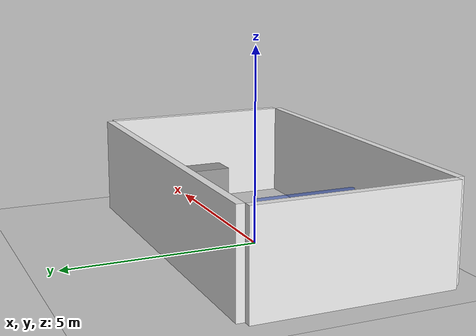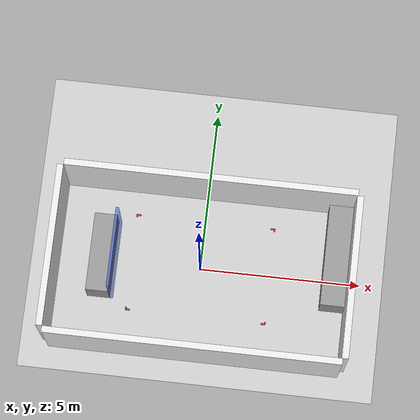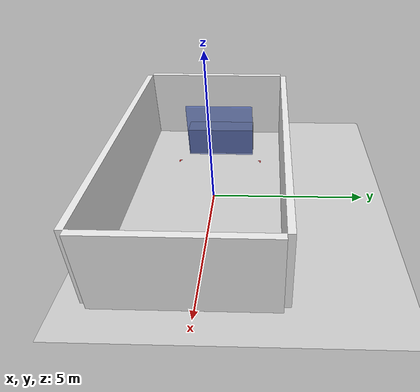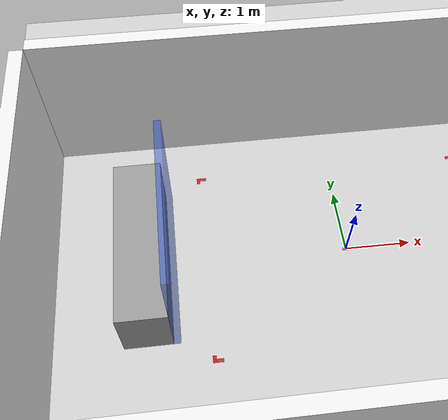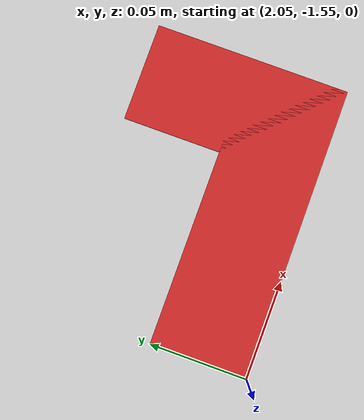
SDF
<sdf version='1.4'>
  <world name='default'>
    <light name='sun' type='directional'>
      <cast_shadows>1</cast_shadows>
      <pose>0 0 10 0 -0 0</pose>
      <diffuse>0.8 0.8 0.8 1</diffuse>
      <specular>0.2 0.2 0.2 1</specular>
      <attenuation>
        <range>1000</range>
        <constant>0.9</constant>
        <linear>0.01</linear>
        <quadratic>0.001</quadratic>
      </attenuation>
      <direction>-0.5 0.1 -0.9</direction>
    </light>
    <model name='ground_plane'>
      <static>1</static>
      <link name='link'>
        <collision name='collision'>
          <geometry>
            <plane>
              <normal>0 0 1</normal>
              <size>100 100</size>
            </plane>
          </geometry>
          <surface>
            <friction>
              <ode>
                <mu>100</mu>
                <mu2>50</mu2>
              </ode>
            </friction>
            <bounce/>
            <contact>
              <ode/>
            </contact>
          </surface>
          <max_contacts>10</max_contacts>
        </collision>
        <visual name='visual'>
          <cast_shadows>0</cast_shadows>
          <geometry>
            <plane>
              <normal>0 0 1</normal>
              <size>100 100</size>
            </plane>
          </geometry>
          <material>
            <script>
              <uri>file://media/materials/scripts/gazebo.material</uri>
              <name>Gazebo/Grey</name>
            </script>
          </material>
        </visual>
        <velocity_decay>
          <linear>0</linear>
          <angular>0</angular>
        </velocity_decay>
        <self_collide>0</self_collide>
        <kinematic>0</kinematic>
        <gravity>1</gravity>
      </link>
    </model>
    <physics type='ode'>
      <max_step_size>0.01</max_step_size>
      <real_time_factor>1</real_time_factor>
      <real_time_update_rate>100</real_time_update_rate>
      <gravity>0 0 -9.8</gravity>
    </physics>
    <scene>
      <ambient>0.4 0.4 0.4 1</ambient>
      <background>0.7 0.7 0.7 1</background>
      <shadows>1</shadows>
    </scene>
    <spherical_coordinates>
      <surface_model>EARTH_WGS84</surface_model>
      <latitude_deg>0</latitude_deg>
      <longitude_deg>0</longitude_deg>
      <elevation>0</elevation>
      <heading_deg>0</heading_deg>
    </spherical_coordinates>
    <model name='tape'>
      <pose>0 0 0 0 -0 0</pose>
      <link name='center'>
        <pose>0 0 0.0005 0 -0 0</pose>
        <inertial>
          <mass>1</mass>
          <inertia>
            <ixx>1</ixx>
            <ixy>0</ixy>
            <ixz>0</ixz>
            <iyy>1</iyy>
            <iyz>0</iyz>
            <izz>1</izz>
          </inertia>
        </inertial>
        <visual name='visual'>
          <geometry>
            <box>
              <size>0.1 0.05 0.001</size>
            </box>
          </geometry>
          <material>
            <script>
              <uri>file://media/materials/scripts/gazebo.material</uri>
              <name>Gazebo/Red</name>
            </script>
          </material>
        </visual>
      </link>
      <link name='FR1'>
        <pose>2.125 -1.525 0.0005 0 -0 0</pose>
        <inertial>
          <mass>1</mass>
          <inertia>
            <ixx>1</ixx>
            <ixy>0</ixy>
            <ixz>0</ixz>
            <iyy>1</iyy>
            <iyz>0</iyz>
            <izz>1</izz>
          </inertia>
        </inertial>
        <visual name='visual'>
          <geometry>
            <box>
              <size>0.15 0.05 0.001</size>
            </box>
          </geometry>
          <material>
            <script>
              <uri>file://media/materials/scripts/gazebo.material</uri>
              <name>Gazebo/Red</name>
            </script>
          </material>
        </visual>
      </link>
      <link name='FR2'>
        <pose>2.175 -1.5 0.0005 0 -0 0</pose>
        <inertial>
          <mass>1</mass>
          <inertia>
            <ixx>1</ixx>
            <ixy>0</ixy>
            <ixz>0</ixz>
            <iyy>1</iyy>
            <iyz>0</iyz>
            <izz>1</izz>
          </inertia>
        </inertial>
        <visual name='visual'>
          <geometry>
            <box>
              <size>0.05 0.1 0.001</size>
            </box>
          </geometry>
          <material>
            <script>
              <uri>file://media/materials/scripts/gazebo.material</uri>
              <name>Gazebo/Red</name>
            </script>
          </material>
        </visual>
      </link>
      <link name='FL1'>
        <pose>2.125 1.525 0.0005 0 -0 0</pose>
        <inertial>
          <mass>1</mass>
          <inertia>
            <ixx>1</ixx>
            <ixy>0</ixy>
            <ixz>0</ixz>
            <iyy>1</iyy>
            <iyz>0</iyz>
            <izz>1</izz>
          </inertia>
        </inertial>
        <visual name='visual'>
          <geometry>
            <box>
              <size>0.15 0.05 0.001</size>
            </box>
          </geometry>
          <material>
            <script>
              <uri>file://media/materials/scripts/gazebo.material</uri>
              <name>Gazebo/Red</name>
            </script>
          </material>
        </visual>
      </link>
      <link name='FL2'>
        <pose>2.175 1.5 0.0005 0 -0 0</pose>
        <inertial>
          <mass>1</mass>
          <inertia>
            <ixx>1</ixx>
            <ixy>0</ixy>
            <ixz>0</ixz>
            <iyy>1</iyy>
            <iyz>0</iyz>
            <izz>1</izz>
          </inertia>
        </inertial>
        <visual name='visual'>
          <geometry>
            <box>
              <size>0.05 0.1 0.001</size>
            </box>
          </geometry>
          <material>
            <script>
              <uri>file://media/materials/scripts/gazebo.material</uri>
              <name>Gazebo/Red</name>
            </script>
          </material>
        </visual>
      </link>
      <link name='RL1'>
        <pose>-2.125 1.525 0.0005 0 -0 0</pose>
        <inertial>
          <mass>1</mass>
          <inertia>
            <ixx>1</ixx>
            <ixy>0</ixy>
            <ixz>0</ixz>
            <iyy>1</iyy>
            <iyz>0</iyz>
            <izz>1</izz>
          </inertia>
        </inertial>
        <visual name='visual'>
          <geometry>
            <box>
              <size>0.15 0.05 0.001</size>
            </box>
          </geometry>
          <material>
            <script>
              <uri>file://media/materials/scripts/gazebo.material</uri>
              <name>Gazebo/Red</name>
            </script>
          </material>
        </visual>
      </link>
      <link name='RL2'>
        <pose>-2.175 1.5 0.0005 0 -0 0</pose>
        <inertial>
          <mass>1</mass>
          <inertia>
            <ixx>1</ixx>
            <ixy>0</ixy>
            <ixz>0</ixz>
            <iyy>1</iyy>
            <iyz>0</iyz>
            <izz>1</izz>
          </inertia>
        </inertial>
        <visual name='visual'>
          <geometry>
            <box>
              <size>0.05 0.1 0.001</size>
            </box>
          </geometry>
          <material>
            <script>
              <uri>file://media/materials/scripts/gazebo.material</uri>
              <name>Gazebo/Red</name>
            </script>
          </material>
        </visual>
      </link>
      <link name='RR1'>
        <pose>-2.125 -1.525 0.0005 0 -0 0</pose>
        <inertial>
          <mass>1</mass>
          <inertia>
            <ixx>1</ixx>
            <ixy>0</ixy>
            <ixz>0</ixz>
            <iyy>1</iyy>
            <iyz>0</iyz>
            <izz>1</izz>
          </inertia>
        </inertial>
        <visual name='visual'>
          <geometry>
            <box>
              <size>0.15 0.05 0.001</size>
            </box>
          </geometry>
          <material>
            <script>
              <uri>file://media/materials/scripts/gazebo.material</uri>
              <name>Gazebo/Red</name>
            </script>
          </material>
        </visual>
      </link>
      <link name='RR2'>
        <pose>-2.175 -1.5 0.0005 0 -0 0</pose>
        <inertial>
          <mass>1</mass>
          <inertia>
            <ixx>1</ixx>
            <ixy>0</ixy>
            <ixz>0</ixz>
            <iyy>1</iyy>
            <iyz>0</iyz>
            <izz>1</izz>
          </inertia>
        </inertial>
        <visual name='visual'>
          <geometry>
            <box>
              <size>0.05 0.1 0.001</size>
            </box>
          </geometry>
          <material>
            <script>
              <uri>file://media/materials/scripts/gazebo.material</uri>
              <name>Gazebo/Red</name>
            </script>
          </material>
        </visual>
      </link>
      <static>1</static>
    </model>

     <model name='command_center'>
      <pose>-3.075 0 0.5 0 0 0</pose>
      <link name='link'>
        <inertial>
          <mass>1000</mass>
          <inertia>
            <ixx>1000</ixx>
            <ixy>0</ixy>
            <ixz>0</ixz>
            <iyy>1000</iyy>
            <iyz>0</iyz>
            <izz>1000</izz>
          </inertia>
        </inertial>
        <collision name='collision'>
          <geometry>
            <box>
              <size>0.7 2.44 1</size>
            </box>
          </geometry>
          <max_contacts>10</max_contacts>
          <surface>
            <bounce/>
            <friction>
              <ode/>
            </friction>
            <contact>
              <ode/>
            </contact>
          </surface>
        </collision>
        <visual name='visual'>
          <geometry>
            <box>
              <size>0.7 2.44 1</size>
            </box>
          </geometry>
          <material>
            <script>
              <uri>file://media/materials/scripts/gazebo.material</uri>
              <name>Gazebo/Grey</name>
            </script>
          </material>
        </visual>
        <velocity_decay>
          <linear>0</linear>
          <angular>0</angular>
        </velocity_decay>
        <self_collide>0</self_collide>
        <kinematic>0</kinematic>
        <gravity>1</gravity>
      </link>
      <static>1</static>
    </model>

    <model name='shield'>
      <pose>-2.675 0 1 0 0 0</pose>
      <link name='link'>
        <inertial>
          <mass>1000</mass>
          <inertia>
            <ixx>1000</ixx>
            <ixy>0</ixy>
            <ixz>0</ixz>
            <iyy>1000</iyy>
            <iyz>0</iyz>
            <izz>1000</izz>
          </inertia>
        </inertial>
        <collision name='collision'>
          <geometry>
            <box>
              <size>.1 2.44 2</size>
            </box>
          </geometry>
          <max_contacts>10</max_contacts>
          <surface>
            <bounce/>
            <friction>
              <ode/>
            </friction>
            <contact>
              <ode/>
            </contact>
          </surface>
        </collision>
        <visual name='visual'>
          <geometry>
            <box>
              <size>0.1 2.44 2</size>
            </box>
          </geometry>
          <material>
            <script>
              <uri>file://media/materials/scripts/gazebo.material</uri>
              <name>Gazebo/BlueTransparent</name>
            </script>
          </material>
        </visual>
        <velocity_decay>
          <linear>0</linear>
          <angular>0</angular>
        </velocity_decay>
        <self_collide>0</self_collide>
        <kinematic>0</kinematic>
        <gravity>1</gravity>
      </link>
      <static>1</static>
    </model>

    <model name='table'>
      <pose>4.17 .770 0.5 0 0 0</pose>
      <link name='link'>
        <inertial>
          <mass>1000</mass>
          <inertia>
            <ixx>1000</ixx>
            <ixy>0</ixy>
            <ixz>0</ixz>
            <iyy>1000</iyy>
            <iyz>0</iyz>
            <izz>1000</izz>
          </inertia>
        </inertial>
        <collision name='collision'>
          <geometry>
            <box>
              <size>0.75 3.35 1</size>
            </box>
          </geometry>
          <max_contacts>10</max_contacts>
          <surface>
            <bounce/>
            <friction>
              <ode/>
            </friction>
            <contact>
              <ode/>
            </contact>
          </surface>
        </collision>
        <visual name='visual'>
          <geometry>
            <box>
              <size>0.75 3.35 1</size>
            </box>
          </geometry>
          <material>
            <script>
              <uri>file://media/materials/scripts/gazebo.material</uri>
              <name>Gazebo/Grey</name>
            </script>
          </material>
        </visual>
        <velocity_decay>
          <linear>0</linear>
          <angular>0</angular>
        </velocity_decay>
        <self_collide>0</self_collide>
        <kinematic>0</kinematic>
        <gravity>1</gravity>
      </link>
      <static>1</static>
    </model>

    <model name='walls'>
      <pose>0 0 1.25 0 0 0</pose>
      <link name='forward'>
        <pose>4.645 -.240 0 0 0 0</pose>
        <inertial>
          <mass>1000</mass>
          <inertia>
            <ixx>1000</ixx>
            <ixy>0</ixy>
            <ixz>0</ixz>
            <iyy>1000</iyy>
            <iyz>0</iyz>
            <izz>1000</izz>
          </inertia>
        </inertial>
        <collision name='collision'>
          <geometry>
            <box>
              <size>.2 5 2.5</size>
            </box>
          </geometry>
          <max_contacts>10</max_contacts>
          <surface>
            <bounce/>
            <friction>
              <ode/>
            </friction>
            <contact>
              <ode/>
            </contact>
          </surface>
        </collision>
        <visual name='visual'>
          <geometry>
            <box>
              <size>.2 5 2.5</size>
            </box>
          </geometry>
          <material>
            <script>
              <uri>file://media/materials/scripts/gazebo.material</uri>
              <name>Gazebo/White</name>
            </script>
          </material>
        </visual>
        <velocity_decay>
          <linear>0</linear>
          <angular>0</angular>
        </velocity_decay>
        <self_collide>0</self_collide>
        <kinematic>0</kinematic>
        <gravity>1</gravity>
      </link>
      <link name='left'>
        <pose>0.075 2.36 0 0 0 0</pose>
        <inertial>
          <mass>1000</mass>
          <inertia>
            <ixx>1000</ixx>
            <ixy>0</ixy>
            <ixz>0</ixz>
            <iyy>1000</iyy>
            <iyz>0</iyz>
            <izz>1000</izz>
          </inertia>
        </inertial>
        <collision name='collision'>
          <geometry>
            <box>
              <size>9 0.2 2.5</size>
            </box>
          </geometry>
          <max_contacts>10</max_contacts>
          <surface>
            <bounce/>
            <friction>
              <ode/>
            </friction>
            <contact>
              <ode/>
            </contact>
          </surface>
        </collision>
        <visual name='visual'>
          <geometry>
            <box>
              <size>9 0.2 2.5</size>
            </box>
          </geometry>
          <material>
            <script>
              <uri>file://media/materials/scripts/gazebo.material</uri>
              <name>Gazebo/White</name>
            </script>
          </material>
        </visual>
        <velocity_decay>
          <linear>0</linear>
          <angular>0</angular>
        </velocity_decay>
        <self_collide>0</self_collide>
        <kinematic>0</kinematic>
        <gravity>1</gravity>
      </link>
      <link name='right'>
        <pose>0.075 -2.84 0 0 0 0</pose>
        <inertial>
          <mass>1000</mass>
          <inertia>
            <ixx>1000</ixx>
            <ixy>0</ixy>
            <ixz>0</ixz>
            <iyy>1000</iyy>
            <iyz>0</iyz>
            <izz>1000</izz>
          </inertia>
        </inertial>
        <collision name='collision'>
          <geometry>
            <box>
              <size>9 0.2 2.5</size>
            </box>
          </geometry>
          <max_contacts>10</max_contacts>
          <surface>
            <bounce/>
            <friction>
              <ode/>
            </friction>
            <contact>
              <ode/>
            </contact>
          </surface>
        </collision>
        <visual name='visual'>
          <geometry>
            <box>
              <size>9 0.2 2.5</size>
            </box>
          </geometry>
          <material>
            <script>
              <uri>file://media/materials/scripts/gazebo.material</uri>
              <name>Gazebo/White</name>
            </script>
          </material>
        </visual>
        <velocity_decay>
          <linear>0</linear>
          <angular>0</angular>
        </velocity_decay>
        <self_collide>0</self_collide>
        <kinematic>0</kinematic>
        <gravity>1</gravity>
      </link>
      <link name='back'>
        <pose>-4.525 -.240 0 0 0 0</pose>
        <inertial>
          <mass>1000</mass>
          <inertia>
            <ixx>1000</ixx>
            <ixy>0</ixy>
            <ixz>0</ixz>
            <iyy>1000</iyy>
            <iyz>0</iyz>
            <izz>1000</izz>
          </inertia>
        </inertial>
        <collision name='collision'>
          <geometry>
            <box>
              <size>.2 5 2.5</size>
            </box>
          </geometry>
          <max_contacts>10</max_contacts>
          <surface>
            <bounce/>
            <friction>
              <ode/>
            </friction>
            <contact>
              <ode/>
            </contact>
          </surface>
        </collision>
        <visual name='visual'>
          <geometry>
            <box>
              <size>.2 5 2.5</size>
            </box>
          </geometry>
          <material>
            <script>
              <uri>file://media/materials/scripts/gazebo.material</uri>
              <name>Gazebo/White</name>
            </script>
          </material>
        </visual>
        <velocity_decay>
          <linear>0</linear>
          <angular>0</angular>
        </velocity_decay>
        <self_collide>0</self_collide>
        <kinematic>0</kinematic>
        <gravity>1</gravity>
      </link>
      <static>1</static>
    </model>

    <gui fullscreen='0'>
      <camera name='user_camera'>
        <pose>-6.15217 -4.1284 12.6231 0 1.01964 0.512191</pose>
        <view_controller>orbit</view_controller>
      </camera>
    </gui>
  </world>
</sdf>
